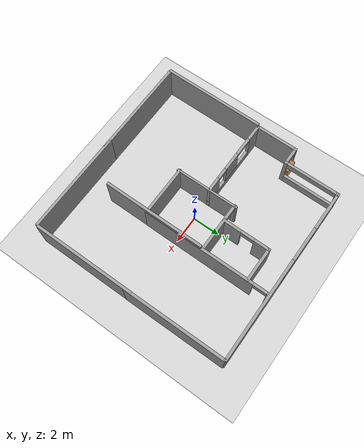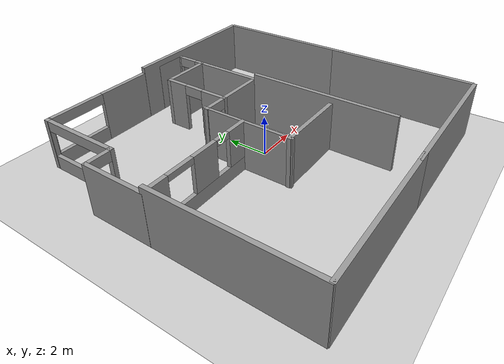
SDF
<sdf version="1.6">
 <world name="GrannyAnnie">
  <model name="ground_plane">
   <static>1</static>
   <link name="link">
    <collision name="collision">
     <geometry><plane><normal>0 0 1</normal><size>100 100</size></plane></geometry>
     <surface><friction><ode><mu>100</mu><mu2>50</mu2></ode></friction></surface>
    </collision>
    <visual name="visual">
     <cast_shadows>0</cast_shadows>
     <geometry><plane><normal>0 0 1</normal><size>100 100</size></plane></geometry>
     <material>
      <script><uri>file://media/materials/scripts/gazebo.material</uri><name>Gazebo/Grey</name></script>
     </material>
    </visual>
    <velocity_decay><linear>0</linear><angular>0</angular></velocity_decay>
   </link>
  </model>
  <model name="RoCKIn@Home">
   <link name="Wall_12">
    <collision name="Wall_12_Collision">
     <geometry><box><size>2.6 0.2 2.5</size></box></geometry>
     <pose>0 0 1.25 0 -0 0</pose>
    </collision>
    <visual name="Wall_12_Visual">
     <pose>0 0 1.25 0 -0 0</pose>
     <geometry><box><size>2.6 0.2 2.5</size></box></geometry>
     <material>
      <script><uri>file://media/materials/scripts/gazebo.material</uri><name>Gazebo/Grey</name></script>
     </material>
    </visual>
    <velocity_decay><linear>0</linear><angular>0</angular></velocity_decay>
    <pose>7.8 1.205 0 0 -0 1.5708</pose>
   </link>
   <link name="Wall_14">
    <pose>6.0996 2.4048 0 0 -0 3.14159</pose>
    <visual name="Wall_14_Visual_0">
     <pose>-1.20789 0 1.25 0 -0 0</pose>
     <geometry><box><size>1.18422 0.2 2.5</size></box></geometry>
     <material>
      <script><uri>file://media/materials/scripts/gazebo.material</uri><name>Gazebo/Grey</name></script>
     </material>
    </visual>
    <collision name="Wall_14_Collision_0">
     <geometry><box><size>1.18422 0.2 2.5</size></box></geometry>
     <pose>-1.20789 0 1.25 0 -0 0</pose>
    </collision>
    <visual name="Wall_14_Visual_1">
     <pose>1.09211 0 1.25 0 -0 0</pose>
     <geometry><box><size>1.41579 0.2 2.5</size></box></geometry>
     <material>
      <script><uri>file://media/materials/scripts/gazebo.material</uri><name>Gazebo/Grey</name></script>
     </material>
    </visual>
    <collision name="Wall_14_Collision_1">
     <geometry><box><size>1.41579 0.2 2.5</size></box></geometry>
     <pose>1.09211 0 1.25 0 -0 0</pose>
    </collision>
    <visual name="Wall_14_Visual_2">
     <pose>-0.115785 0 2.25 0 -0 0</pose>
     <geometry><box><size>1 0.2 0.5</size></box></geometry>
     <material>
      <script><uri>file://media/materials/scripts/gazebo.material</uri><name>Gazebo/Grey</name></script>
     </material>
    </visual>
    <collision name="Wall_14_Collision_2">
     <geometry><box><size>1 0.2 0.5</size></box></geometry>
     <pose>-0.115785 0 2.25 0 -0 0</pose>
    </collision>
    <velocity_decay><linear>0</linear><angular>0</angular></velocity_decay>
   </link>
   <link name="Wall_16">
    <collision name="Wall_16_Collision">
     <geometry><box><size>2.60492 0.2 2.5</size></box></geometry>
     <pose>0 0 1.25 0 -0 0</pose>
    </collision>
    <visual name="Wall_16_Visual">
     <pose>0 0 1.25 0 -0 0</pose>
     <geometry><box><size>2.60492 0.2 2.5</size></box></geometry>
     <material>
      <script><uri>file://media/materials/scripts/gazebo.material</uri><name>Gazebo/Grey</name></script>
     </material>
    </visual>
    <velocity_decay><linear>0</linear><angular>0</angular></velocity_decay>
    <pose>4.39903 1.20277 0 0 -0 1.5708</pose>
   </link>
   <link name="Wall_18">
    <collision name="Wall_18_Collision">
     <geometry><box><size>3.8 0.2 2.5</size></box></geometry>
     <pose>0 0 1.25 0 -0 0</pose>
    </collision>
    <visual name="Wall_18_Visual">
     <pose>0 0 1.25 0 -0 0</pose>
     <geometry><box><size>3.8 0.2 2.5</size></box></geometry>
     <material>
      <script><uri>file://media/materials/scripts/gazebo.material</uri><name>Gazebo/Grey</name></script>
     </material>
    </visual>
    <velocity_decay><linear>0</linear><angular>0</angular></velocity_decay>
    <pose>0.024876 1.80003 0 0 -0 1.5708</pose>
   </link>
   <link name="Wall_2">
    <pose>4.7266 0 0 0 -0 0</pose>
    <visual name="Wall_2_Visual_0">
     <pose>-0.649274 0 1.25 0 -0 0</pose>
     <geometry><box><size>8.30145 0.2 2.5</size></box></geometry>
     <material>
      <script><uri>file://media/materials/scripts/gazebo.material</uri><name>Gazebo/Grey</name></script>
     </material>
    </visual>
    <collision name="Wall_2_Collision_0">
     <geometry><box><size>8.30145 0.2 2.5</size></box></geometry>
     <pose>-0.649274 0 1.25 0 -0 0</pose>
    </collision>
    <visual name="Wall_2_Visual_1">
     <pose>4.65073 0 1.25 0 -0 0</pose>
     <geometry><box><size>0.298547 0.2 2.5</size></box></geometry>
     <material>
      <script><uri>file://media/materials/scripts/gazebo.material</uri><name>Gazebo/Grey</name></script>
     </material>
    </visual>
    <collision name="Wall_2_Collision_1">
     <geometry><box><size>0.298547 0.2 2.5</size></box></geometry>
     <pose>4.65073 0 1.25 0 -0 0</pose>
    </collision>
    <visual name="Wall_2_Visual_2">
     <pose>4.00145 0 2.25 0 -0 0</pose>
     <geometry><box><size>1 0.2 0.5</size></box></geometry>
     <material>
      <script><uri>file://media/materials/scripts/gazebo.material</uri><name>Gazebo/Grey</name></script>
     </material>
    </visual>
    <collision name="Wall_2_Collision_2">
     <geometry><box><size>1 0.2 0.5</size></box></geometry>
     <pose>4.00145 0 2.25 0 -0 0</pose>
    </collision>
    <velocity_decay><linear>0</linear><angular>0</angular></velocity_decay>
   </link>
   <link name="Wall_22">
    <pose>4.39856 3.00206 0 0 -0 1.5708</pose>
    <visual name="Wall_22_Visual_0">
     <pose>-0.601085 0 1.25 0 -0 0</pose>
     <geometry><box><size>0.194709 0.2 2.5</size></box></geometry>
     <material>
      <script><uri>file://media/materials/scripts/gazebo.material</uri><name>Gazebo/Grey</name></script>
     </material>
    </visual>
    <collision name="Wall_22_Collision_0">
     <geometry><box><size>0.194709 0.2 2.5</size></box></geometry>
     <pose>-0.601085 0 1.25 0 -0 0</pose>
    </collision>
    <visual name="Wall_22_Visual_1">
     <pose>0.597355 0 1.25 0 -0 0</pose>
     <geometry><box><size>0.202171 0.2 2.5</size></box></geometry>
     <material>
      <script><uri>file://media/materials/scripts/gazebo.material</uri><name>Gazebo/Grey</name></script>
     </material>
    </visual>
    <collision name="Wall_22_Collision_1">
     <geometry><box><size>0.202171 0.2 2.5</size></box></geometry>
     <pose>0.597355 0 1.25 0 -0 0</pose>
    </collision>
    <visual name="Wall_22_Visual_2">
     <pose>-0.003731 0 2.25 0 -0 0</pose>
     <geometry><box><size>1 0.2 0.5</size></box></geometry>
     <material>
      <script><uri>file://media/materials/scripts/gazebo.material</uri><name>Gazebo/Grey</name></script>
     </material>
    </visual>
    <collision name="Wall_22_Collision_2">
     <geometry><box><size>1 0.2 0.5</size></box></geometry>
     <pose>-0.003731 0 2.25 0 -0 0</pose>
    </collision>
    <velocity_decay><linear>0</linear><angular>0</angular></velocity_decay>
   </link>
   <link name="Wall_24">
    <pose>7.42703 8.20242 0 0 -0 3.14159</pose>
    <visual name="Wall_24_Visual_0">
     <pose>-1.97924 0 1.25 0 -0 0</pose>
     <geometry><box><size>0.241529 0.2 2.5</size></box></geometry>
     <material>
      <script><uri>file://media/materials/scripts/gazebo.material</uri><name>Gazebo/Grey</name></script>
     </material>
    </visual>
    <collision name="Wall_24_Collision_0">
     <geometry><box><size>0.241529 0.2 2.5</size></box></geometry>
     <pose>-1.97924 0 1.25 0 -0 0</pose>
    </collision>
    <visual name="Wall_24_Visual_1">
     <pose>1.97395 0 1.25 0 -0 0</pose>
     <geometry><box><size>0.252091 0.2 2.5</size></box></geometry>
     <material>
      <script><uri>file://media/materials/scripts/gazebo.material</uri><name>Gazebo/Grey</name></script>
     </material>
    </visual>
    <collision name="Wall_24_Collision_1">
     <geometry><box><size>0.252091 0.2 2.5</size></box></geometry>
     <pose>1.97395 0 1.25 0 -0 0</pose>
    </collision>
    <visual name="Wall_24_Visual_2">
     <pose>-0.005281 0 2.25 0 -0 0</pose>
     <geometry><box><size>3.70638 0.2 0.5</size></box></geometry>
     <material>
      <script><uri>file://media/materials/scripts/gazebo.material</uri><name>Gazebo/Grey</name></script>
     </material>
    </visual>
    <collision name="Wall_24_Collision_2">
     <geometry><box><size>3.70638 0.2 0.5</size></box></geometry>
     <pose>-0.005281 0 2.25 0 -0 0</pose>
    </collision>
    <visual name="Wall_24_Visual_3">
     <pose>-0.005281 0 0.35 0 -0 0</pose>
     <geometry><box><size>3.70638 0.2 0.7</size></box></geometry>
     <material>
      <script><uri>file://media/materials/scripts/gazebo.material</uri><name>Gazebo/Grey</name></script>
     </material>
    </visual>
    <collision name="Wall_24_Collision_3">
     <geometry><box><size>3.70638 0.2 0.7</size></box></geometry>
     <pose>-0.005281 0 0.35 0 -0 0</pose>
    </collision>
    <velocity_decay><linear>0</linear><angular>0</angular></velocity_decay>
   </link>
   <link name="Wall_28">
    <collision name="Wall_28_Collision">
     <geometry><box><size>3.2 0.2 2.5</size></box></geometry>
     <pose>0 0 1.25 0 -0 0</pose>
    </collision>
    <visual name="Wall_28_Visual">
     <pose>0 0 1.25 0 -0 0</pose>
     <geometry><box><size>3.2 0.2 2.5</size></box></geometry>
     <material>
      <script><uri>file://media/materials/scripts/gazebo.material</uri><name>Gazebo/Grey</name></script>
     </material>
    </visual>
    <velocity_decay><linear>0</linear><angular>0</angular></velocity_decay>
    <pose>3.92571 9.40229 0 0 -0 3.14159</pose>
   </link>
   <link name="Wall_30">
    <pose>2.42541 6.50159 0 0 0 -1.5708</pose>
    <visual name="Wall_30_Visual_0">
     <pose>-2.363 0 1.25 0 -0 0</pose>
     <geometry><box><size>1.27269 0.2 2.5</size></box></geometry>
     <material>
      <script><uri>file://media/materials/scripts/gazebo.material</uri><name>Gazebo/Grey</name></script>
     </material>
    </visual>
    <collision name="Wall_30_Collision_0">
     <geometry><box><size>1.27269 0.2 2.5</size></box></geometry>
     <pose>-2.363 0 1.25 0 -0 0</pose>
    </collision>
    <visual name="Wall_30_Visual_1">
     <pose>0.636346 0 0.35 0 -0 0</pose>
     <geometry><box><size>4.726 0.2 0.7</size></box></geometry>
     <material>
      <script><uri>file://media/materials/scripts/gazebo.material</uri><name>Gazebo/Grey</name></script>
     </material>
    </visual>
    <collision name="Wall_30_Collision_1">
     <geometry><box><size>4.726 0.2 0.7</size></box></geometry>
     <pose>0.636346 0 0.35 0 -0 0</pose>
    </collision>
    <visual name="Wall_30_Visual_2">
     <pose>0.36359 0 1.6 0 -0 0</pose>
     <geometry><box><size>1.38049 0.2 1.8</size></box></geometry>
     <material>
      <script><uri>file://media/materials/scripts/gazebo.material</uri><name>Gazebo/Grey</name></script>
     </material>
    </visual>
    <collision name="Wall_30_Collision_2">
     <geometry><box><size>1.38049 0.2 1.8</size></box></geometry>
     <pose>0.36359 0 1.6 0 -0 0</pose>
    </collision>
    <visual name="Wall_30_Visual_3">
     <pose>2.42659 0 1.6 0 -0 0</pose>
     <geometry><box><size>1.14551 0.2 1.8</size></box></geometry>
     <material>
      <script><uri>file://media/materials/scripts/gazebo.material</uri><name>Gazebo/Grey</name></script>
     </material>
    </visual>
    <collision name="Wall_30_Collision_3">
     <geometry><box><size>1.14551 0.2 1.8</size></box></geometry>
     <pose>2.42659 0 1.6 0 -0 0</pose>
    </collision>
    <visual name="Wall_30_Visual_4">
     <pose>-1.02665 0 2.35 0 -0 0</pose>
     <geometry><box><size>1.4 0.2 0.3</size></box></geometry>
     <material>
      <script><uri>file://media/materials/scripts/gazebo.material</uri><name>Gazebo/Grey</name></script>
     </material>
    </visual>
    <collision name="Wall_30_Collision_4">
     <geometry><box><size>1.4 0.2 0.3</size></box></geometry>
     <pose>-1.02665 0 2.35 0 -0 0</pose>
    </collision>
    <visual name="Wall_30_Visual_5">
     <pose>1.45383 0 2.35 0 -0 0</pose>
     <geometry><box><size>0.8 0.2 0.3</size></box></geometry>
     <material>
      <script><uri>file://media/materials/scripts/gazebo.material</uri><name>Gazebo/Grey</name></script>
     </material>
    </visual>
    <collision name="Wall_30_Collision_5">
     <geometry><box><size>0.8 0.2 0.3</size></box></geometry>
     <pose>1.45383 0 2.35 0 -0 0</pose>
    </collision>
    <velocity_decay><linear>0</linear><angular>0</angular></velocity_decay>
   </link>
   <link name="Wall_32">
    <pose>5.42654 8.80216 0 0 0 -1.5708</pose>
    <visual name="Wall_32_Visual_0">
     <pose>-0.599775 0 1.25 0 -0 0</pose>
     <geometry><box><size>0.199231 0.2 2.5</size></box></geometry>
     <material>
      <script><uri>file://media/materials/scripts/gazebo.material</uri><name>Gazebo/Grey</name></script>
     </material>
    </visual>
    <collision name="Wall_32_Collision_0">
     <geometry><box><size>0.199231 0.2 2.5</size></box></geometry>
     <pose>-0.599775 0 1.25 0 -0 0</pose>
    </collision>
    <visual name="Wall_32_Visual_1">
     <pose>0.599615 0 1.25 0 -0 0</pose>
     <geometry><box><size>0.199549 0.2 2.5</size></box></geometry>
     <material>
      <script><uri>file://media/materials/scripts/gazebo.material</uri><name>Gazebo/Grey</name></script>
     </material>
    </visual>
    <collision name="Wall_32_Collision_1">
     <geometry><box><size>0.199549 0.2 2.5</size></box></geometry>
     <pose>0.599615 0 1.25 0 -0 0</pose>
    </collision>
    <visual name="Wall_32_Visual_2">
     <pose>-0.000159 0 2.25 0 -0 0</pose>
     <geometry><box><size>1 0.2 0.5</size></box></geometry>
     <material>
      <script><uri>file://media/materials/scripts/gazebo.material</uri><name>Gazebo/Grey</name></script>
     </material>
    </visual>
    <collision name="Wall_32_Collision_2">
     <geometry><box><size>1 0.2 0.5</size></box></geometry>
     <pose>-0.000159 0 2.25 0 -0 0</pose>
    </collision>
    <velocity_decay><linear>0</linear><angular>0</angular></velocity_decay>
   </link>
   <link name="Wall_8">
    <pose>9.42875 4.1026 0 0 -0 1.5708</pose>
    <visual name="Wall_8_Visual_0">
     <pose>-1.48935 0 1.25 0 -0 0</pose>
     <geometry><box><size>5.42201 0.2 2.5</size></box></geometry>
     <material>
      <script><uri>file://media/materials/scripts/gazebo.material</uri><name>Gazebo/Grey</name></script>
     </material>
    </visual>
    <collision name="Wall_8_Collision_0">
     <geometry><box><size>5.42201 0.2 2.5</size></box></geometry>
     <pose>-1.48935 0 1.25 0 -0 0</pose>
    </collision>
    <visual name="Wall_8_Visual_1">
     <pose>4.07465 0 1.25 0 -0 0</pose>
     <geometry><box><size>0.251416 0.2 2.5</size></box></geometry>
     <material>
      <script><uri>file://media/materials/scripts/gazebo.material</uri><name>Gazebo/Grey</name></script>
     </material>
    </visual>
    <collision name="Wall_8_Collision_1">
     <geometry><box><size>0.251416 0.2 2.5</size></box></geometry>
     <pose>4.07465 0 1.25 0 -0 0</pose>
    </collision>
    <visual name="Wall_8_Visual_2">
     <pose>2.5853 0 2.25 0 -0 0</pose>
     <geometry><box><size>2.72728 0.2 0.5</size></box></geometry>
     <material>
      <script><uri>file://media/materials/scripts/gazebo.material</uri><name>Gazebo/Grey</name></script>
     </material>
    </visual>
    <collision name="Wall_8_Collision_2">
     <geometry><box><size>2.72728 0.2 0.5</size></box></geometry>
     <pose>2.5853 0 2.25 0 -0 0</pose>
    </collision>
    <visual name="Wall_8_Visual_3">
     <pose>2.5853 0 0.35 0 -0 0</pose>
     <geometry><box><size>2.72728 0.2 0.7</size></box></geometry>
     <material>
      <script><uri>file://media/materials/scripts/gazebo.material</uri><name>Gazebo/Grey</name></script>
     </material>
    </visual>
    <collision name="Wall_8_Collision_3">
     <geometry><box><size>2.72728 0.2 0.7</size></box></geometry>
     <pose>2.5853 0 0.35 0 -0 0</pose>
    </collision>
    <velocity_decay><linear>0</linear><angular>0</angular></velocity_decay>
   </link>
   <static>1</static>
   <pose>2.1556 -2.27801 0 0 -0 1.57</pose>
  </model>
  <model name="bookshelf">
   <static>1</static>
   <link name="link">
    <inertial><mass>1</mass></inertial>
    <collision name="back">
     <pose>0 0.005 0.6 0 -0 0</pose>
     <geometry><box><size>0.9 0.01 1.2</size></box></geometry>
    </collision>
    <visual name="visual1">
     <pose>0 0.005 0.6 0 -0 0</pose>
     <geometry><box><size>0.9 0.01 1.2</size></box></geometry>
     <material>
      <script><uri>file://media/materials/scripts/gazebo.material</uri><name>Gazebo/Wood</name></script>
     </material>
    </visual>
    <collision name="left_side">
     <pose>0.45 -0.195 0.6 0 -0 0</pose>
     <geometry><box><size>0.02 0.4 1.2</size></box></geometry>
    </collision>
    <visual name="visual2">
     <pose>0.45 -0.195 0.6 0 -0 0</pose>
     <geometry><box><size>0.02 0.4 1.2</size></box></geometry>
     <material>
      <script><uri>file://media/materials/scripts/gazebo.material</uri><name>Gazebo/Wood</name></script>
     </material>
    </visual>
    <collision name="right_side">
     <pose>-0.45 -0.195 0.6 0 -0 0</pose>
     <geometry><box><size>0.02 0.4 1.2</size></box></geometry>
    </collision>
    <visual name="visual3">
     <pose>-0.45 -0.195 0.6 0 -0 0</pose>
     <geometry><box><size>0.02 0.4 1.2</size></box></geometry>
     <material>
      <script><uri>file://media/materials/scripts/gazebo.material</uri><name>Gazebo/Wood</name></script>
     </material>
    </visual>
    <collision name="bottom">
     <pose>0 -0.195 0.03 0 -0 0</pose>
     <geometry><box><size>0.88 0.4 0.06</size></box></geometry>
    </collision>
    <visual name="visual4">
     <pose>0 -0.195 0.03 0 -0 0</pose>
     <geometry><box><size>0.88 0.4 0.06</size></box></geometry>
     <material>
      <script><uri>file://media/materials/scripts/gazebo.material</uri><name>Gazebo/Wood</name></script>
     </material>
    </visual>
    <collision name="top">
     <pose>0 -0.195 1.19 0 -0 0</pose>
     <geometry><box><size>0.88 0.4 0.02</size></box></geometry>
    </collision>
    <visual name="visual5">
     <pose>0 -0.195 1.19 0 -0 0</pose>
     <geometry><box><size>0.88 0.4 0.02</size></box></geometry>
     <material>
      <script><uri>file://media/materials/scripts/gazebo.material</uri><name>Gazebo/Wood</name></script>
     </material>
    </visual>
    <collision name="low_shelf">
     <pose>0 -0.195 0.43 0 -0 0</pose>
     <geometry><box><size>0.88 0.4 0.02</size></box></geometry>
    </collision>
    <visual name="visual6">
     <pose>0 -0.195 0.43 0 -0 0</pose>
     <geometry><box><size>0.88 0.4 0.02</size></box></geometry>
     <material>
      <script><uri>file://media/materials/scripts/gazebo.material</uri><name>Gazebo/Wood</name></script>
     </material>
    </visual>
    <collision name="high_shelf">
     <pose>0 -0.195 0.8 0 -0 0</pose>
     <geometry><box><size>0.88 0.4 0.02</size></box></geometry>
    </collision>
    <visual name="visual7">
     <pose>0 -0.195 0.8 0 -0 0</pose>
     <geometry><box><size>0.88 0.4 0.02</size></box></geometry>
     <material>
      <script><uri>file://media/materials/scripts/gazebo.material</uri><name>Gazebo/Wood</name></script>
     </material>
    </visual>
    <velocity_decay><linear>0</linear><angular>0</angular></velocity_decay>
   </link>
   <pose>-6.62417 3.07498 0 0 -0 3.13796</pose>
  </model>
  <model name="grey_wall_0">
   <static>1</static>
   <link name="link">
    <pose>0 0 1.4 0 -0 0</pose>
    <collision name="collision"><geometry><box><size>7.5 0.2 2.8</size></box></geometry></collision>
    <visual name="visual">
     <cast_shadows>0</cast_shadows>
     <geometry><box><size>7.5 0.2 2.8</size></box></geometry>
     <material>
      <script>
       <uri>model://grey_wall/materials/scripts</uri>
       <uri>model://grey_wall/materials/textures</uri>
       <name>vrc/grey_wall</name>
      </script>
     </material>
    </visual>
    <velocity_decay><linear>0</linear><angular>0</angular></velocity_decay>
   </link>
   <pose>-7.25571 -3.5819 0 0 0 -1.57522</pose>
  </model>
  <model name="grey_wall_1">
   <static>1</static>
   <link name="link">
    <pose>0 0 1.4 0 -0 0</pose>
    <collision name="collision"><geometry><box><size>7.5 0.2 2.8</size></box></geometry></collision>
    <visual name="visual">
     <cast_shadows>0</cast_shadows>
     <geometry><box><size>7.5 0.2 2.8</size></box></geometry>
     <material>
      <script>
       <uri>model://grey_wall/materials/scripts</uri>
       <uri>model://grey_wall/materials/textures</uri>
       <name>vrc/grey_wall</name>
      </script>
     </material>
    </visual>
    <velocity_decay><linear>0</linear><angular>0</angular></velocity_decay>
   </link>
   <pose>3.27943 7.15202 0 0 -0 0</pose>
  </model>
  <model name="grey_wall_2">
   <static>1</static>
   <link name="link">
    <pose>0 0 1.4 0 -0 0</pose>
    <collision name="collision"><geometry><box><size>7.5 0.2 2.8</size></box></geometry></collision>
    <visual name="visual">
     <cast_shadows>0</cast_shadows>
     <geometry><box><size>7.5 0.2 2.8</size></box></geometry>
     <material>
      <script>
       <uri>model://grey_wall/materials/scripts</uri>
       <uri>model://grey_wall/materials/textures</uri>
       <name>vrc/grey_wall</name>
      </script>
     </material>
    </visual>
    <velocity_decay><linear>0</linear><angular>0</angular></velocity_decay>
   </link>
   <pose>-3.57864 -7.27256 0 0 -0 0</pose>
  </model>
  <model name="grey_wall_3">
   <static>1</static>
   <link name="link">
    <pose>0 0 1.4 0 -0 0</pose>
    <collision name="collision"><geometry><box><size>7.5 0.2 2.8</size></box></geometry></collision>
    <visual name="visual">
     <cast_shadows>0</cast_shadows>
     <geometry><box><size>7.5 0.2 2.8</size></box></geometry>
     <material>
      <script>
       <uri>model://grey_wall/materials/scripts</uri>
       <uri>model://grey_wall/materials/textures</uri>
       <name>vrc/grey_wall</name>
      </script>
     </material>
    </visual>
    <velocity_decay><linear>0</linear><angular>0</angular></velocity_decay>
   </link>
   <pose>7.02581 3.41596 0 0 0 -1.566</pose>
  </model>
  <model name="grey_wall_4">
   <static>1</static>
   <link name="link">
    <pose>0 0 1.4 0 -0 0</pose>
    <collision name="collision"><geometry><box><size>7.5 0.2 2.8</size></box></geometry></collision>
    <visual name="visual">
     <cast_shadows>0</cast_shadows>
     <geometry><box><size>7.5 0.2 2.8</size></box></geometry>
     <material>
      <script>
       <uri>model://grey_wall/materials/scripts</uri>
       <uri>model://grey_wall/materials/textures</uri>
       <name>vrc/grey_wall</name>
      </script>
     </material>
    </visual>
    <velocity_decay><linear>0</linear><angular>0</angular></velocity_decay>
   </link>
   <pose>7.03023 -3.4783 0 0 0 -1.5708</pose>
  </model>
  <model name="grey_wall_5">
   <static>1</static>
   <link name="link">
    <pose>0 0 1.4 0 -0 0</pose>
    <collision name="collision"><geometry><box><size>7.5 0.2 2.8</size></box></geometry></collision>
    <visual name="visual">
     <cast_shadows>0</cast_shadows>
     <geometry><box><size>7.5 0.2 2.8</size></box></geometry>
     <material>
      <script>
       <uri>model://grey_wall/materials/scripts</uri>
       <uri>model://grey_wall/materials/textures</uri>
       <name>vrc/grey_wall</name>
      </script>
     </material>
    </visual>
    <velocity_decay><linear>0</linear><angular>0</angular></velocity_decay>
   </link>
   <pose>3.29916 -7.27083 0 0 -0 0</pose>
  </model>
  <model name="grey_wall_6">
   <static>1</static>
   <link name="link">
    <pose>0 0 1.4 0 -0 0</pose>
    <collision name="collision"><geometry><box><size>7.5 0.2 2.8</size></box></geometry></collision>
    <visual name="visual">
     <cast_shadows>0</cast_shadows>
     <geometry><box><size>7.5 0.2 2.8</size></box></geometry>
     <material>
      <script>
       <uri>model://grey_wall/materials/scripts</uri>
       <uri>model://grey_wall/materials/textures</uri>
       <name>vrc/grey_wall</name>
      </script>
     </material>
    </visual>
    <velocity_decay><linear>0</linear><angular>0</angular></velocity_decay>
   </link>
   <pose>2.13991 -1.7222 0 0 -0 1.5708</pose>
  </model>
  <model name="123">
   <pose>-1.43003 -0.048605 0 0 -0 0</pose>
   <link name="Wall_14">
    <collision name="Wall_14_Collision">
     <geometry><box><size>4.75 0.15 2.5</size></box></geometry>
     <pose>0 0 1.25 0 -0 0</pose>
    </collision>
    <visual name="Wall_14_Visual">
     <pose>0 0 1.25 0 -0 0</pose>
     <geometry><box><size>4.75 0.15 2.5</size></box></geometry>
     <material>
      <script><uri>file://media/materials/scripts/gazebo.material</uri><name>Gazebo/Grey</name></script>
      <ambient>0.333333 0.341176 0.32549 1</ambient>
     </material>
     <meta><layer>0</layer></meta>
    </visual>
    <pose>0 0 0 0 -0 1.5708</pose>
   </link>
   <static>1</static>
  </model>
 </world>
</sdf>
